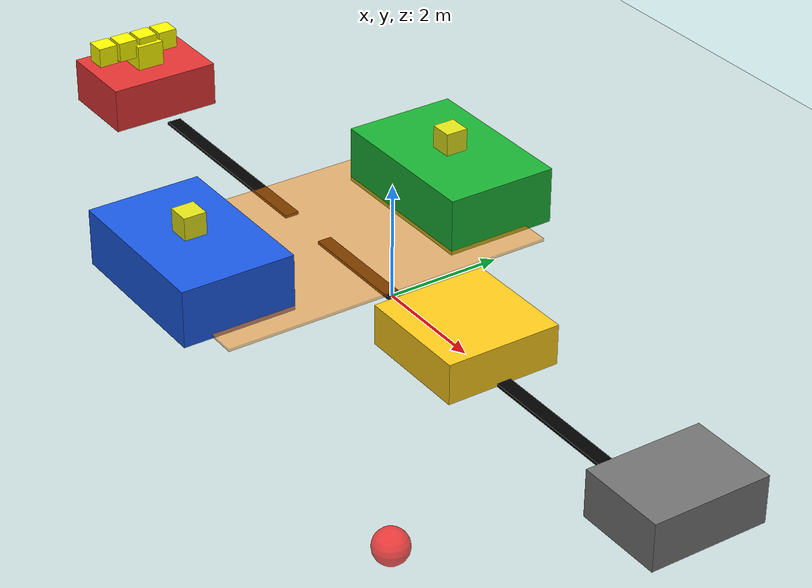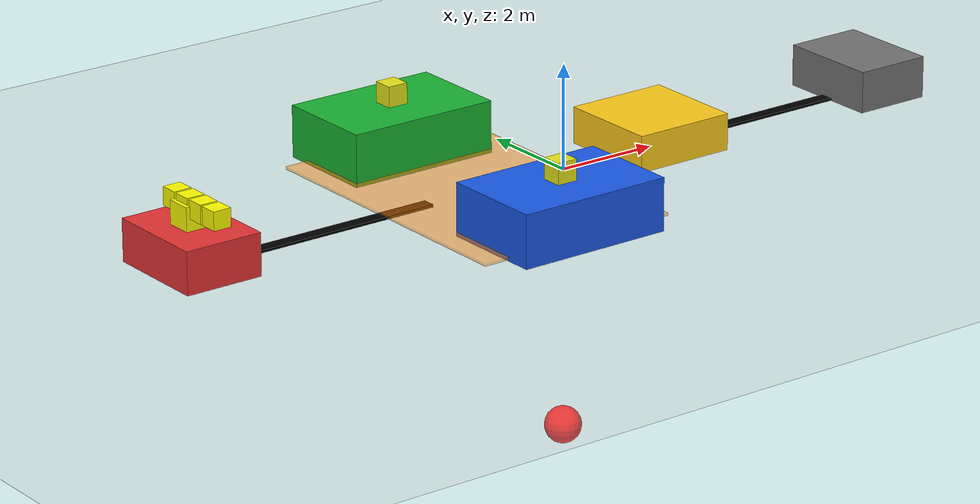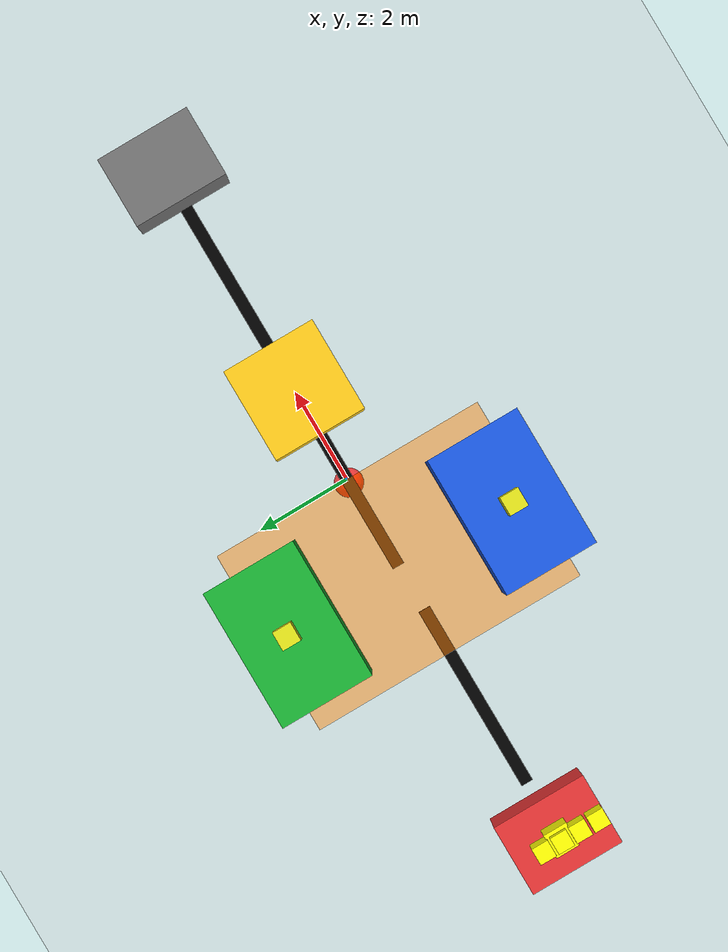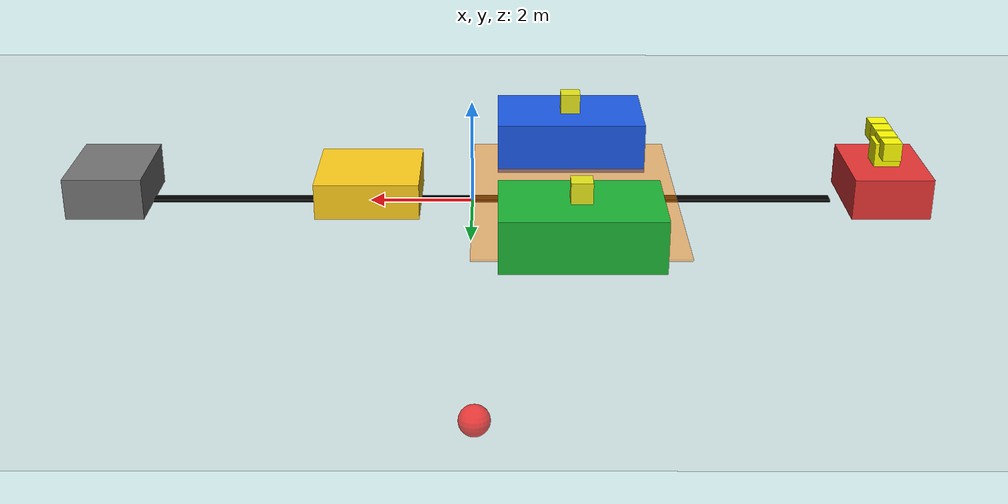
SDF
<?xml version="1.0" ?>
<sdf version="1.10">
  <world name="resilience_aware_digital_twin_world">

    <plugin name="gz::sim::systems::Physics" filename="gz-sim-physics-system"/>
    <plugin name="gz::sim::systems::UserCommands" filename="gz-sim-user-commands-system"/>
    <plugin name="gz::sim::systems::SceneBroadcaster" filename="gz-sim-scene-broadcaster-system"/>

    <gravity>0 0 -9.8</gravity>

    <scene>
      <ambient>0.5 0.5 0.5 1</ambient>
      <background>0.72 0.78 0.82 1</background>
      <shadows>true</shadows>
    </scene>

    <!-- Ground plane -->
    <model name="ground_plane">
      <static>true</static>
      <link name="link">
        <collision name="collision">
          <geometry>
            <plane>
              <normal>0 0 1</normal>
              <size>30 20</size>
            </plane>
          </geometry>
        </collision>
        <visual name="visual">
          <geometry>
            <plane>
              <normal>0 0 1</normal>
              <size>30 20</size>
            </plane>
          </geometry>
          <material>
            <ambient>0.82 0.82 0.82 1</ambient>
            <diffuse>0.82 0.82 0.82 1</diffuse>
          </material>
        </visual>
      </link>
    </model>

    <!-- Loading station -->
    <model name="loading_station">
      <static>true</static>
      <pose>-8 0 0.4 0 0 0</pose>
      <link name="link">
        <collision name="collision">
          <geometry>
            <box><size>1.5 2 0.8</size></box>
          </geometry>
        </collision>
        <visual name="visual">
          <geometry>
            <box><size>1.5 2 0.8</size></box>
          </geometry>
          <material>
            <ambient>0.9 0.2 0.2 1</ambient>
            <diffuse>0.9 0.2 0.2 1</diffuse>
          </material>
        </visual>
      </link>
    </model>

    <!-- Production Cell 1 -->
    <model name="production_cell_1">
      <static>true</static>
      <pose>-2 2.5 0.5 0 0 0</pose>
      <link name="link">
        <collision name="collision">
          <geometry>
            <box><size>3 2 1</size></box>
          </geometry>
        </collision>
        <visual name="visual">
          <geometry>
            <box><size>3 2 1</size></box>
          </geometry>
          <material>
            <ambient>0.1 0.7 0.2 1</ambient>
            <diffuse>0.1 0.7 0.2 1</diffuse>
          </material>
        </visual>
      </link>
    </model>

    <!-- Production Cell 2 -->
    <model name="production_cell_2">
      <static>true</static>
      <pose>-2 -2.5 0.5 0 0 0</pose>
      <link name="link">
        <collision name="collision">
          <geometry>
            <box><size>3 2 1</size></box>
          </geometry>
        </collision>
        <visual name="visual">
          <geometry>
            <box><size>3 2 1</size></box>
          </geometry>
          <material>
            <ambient>0.1 0.35 0.9 1</ambient>
            <diffuse>0.1 0.35 0.9 1</diffuse>
          </material>
        </visual>
      </link>
    </model>

    <!-- Shared buffer for workload balancing -->
    <model name="shared_buffer">
      <static>true</static>
      <pose>2 0 0.35 0 0 0</pose>
      <link name="link">
        <collision name="collision">
          <geometry>
            <box><size>2 2 0.7</size></box>
          </geometry>
        </collision>
        <visual name="visual">
          <geometry>
            <box><size>2 2 0.7</size></box>
          </geometry>
          <material>
            <ambient>1 0.8 0.1 1</ambient>
            <diffuse>1 0.8 0.1 1</diffuse>
          </material>
        </visual>
      </link>
    </model>

    <!-- Output station -->
    <model name="output_station">
      <static>true</static>
      <pose>7 0 0.4 0 0 0</pose>
      <link name="link">
        <collision name="collision">
          <geometry>
            <box><size>1.5 2 0.8</size></box>
          </geometry>
        </collision>
        <visual name="visual">
          <geometry>
            <box><size>1.5 2 0.8</size></box>
          </geometry>
          <material>
            <ambient>0.45 0.45 0.45 1</ambient>
            <diffuse>0.45 0.45 0.45 1</diffuse>
          </material>
        </visual>
      </link>
    </model>

    <!-- Delay monitoring zone -->
    <model name="delay_monitor_zone">
      <static>true</static>
      <pose>-2 0 0.05 0 0 0</pose>
      <link name="link">
        <visual name="visual">
          <geometry>
            <box><size>4 6 0.05</size></box>
          </geometry>
          <material>
            <ambient>1 0.5 0 0.5</ambient>
            <diffuse>1 0.5 0 0.5</diffuse>
          </material>
        </visual>
      </link>
    </model>

    <!-- Workflow path markers -->
    <model name="path_loading_to_cells">
      <static>true</static>
      <pose>-5 0 0.03 0 0 0</pose>
      <link name="link">
        <visual name="visual">
          <geometry>
            <box><size>4 0.25 0.05</size></box>
          </geometry>
          <material>
            <ambient>0 0 0 1</ambient>
            <diffuse>0 0 0 1</diffuse>
          </material>
        </visual>
      </link>
    </model>

    <model name="path_cells_to_buffer">
      <static>true</static>
      <pose>0 0 0.03 0 0 0</pose>
      <link name="link">
        <visual name="visual">
          <geometry>
            <box><size>4 0.25 0.05</size></box>
          </geometry>
          <material>
            <ambient>0 0 0 1</ambient>
            <diffuse>0 0 0 1</diffuse>
          </material>
        </visual>
      </link>
    </model>

    <model name="path_buffer_to_output">
      <static>true</static>
      <pose>4.8 0 0.03 0 0 0</pose>
      <link name="link">
        <visual name="visual">
          <geometry>
            <box><size>3.6 0.25 0.05</size></box>
          </geometry>
          <material>
            <ambient>0 0 0 1</ambient>
            <diffuse>0 0 0 1</diffuse>
          </material>
        </visual>
      </link>
    </model>

    <!-- Workpieces -->
    <model name="workpiece_cell_1">
      <static>false</static>
      <pose>-2 2.5 1.2 0 0 0</pose>
      <link name="link">
        <collision name="collision">
          <geometry>
            <box><size>0.4 0.4 0.4</size></box>
          </geometry>
        </collision>
        <visual name="visual">
          <geometry>
            <box><size>0.4 0.4 0.4</size></box>
          </geometry>
          <material>
            <ambient>0.9 0.9 0.1 1</ambient>
            <diffuse>0.9 0.9 0.1 1</diffuse>
          </material>
        </visual>
      </link>
    </model>

    <model name="workpiece_cell_2">
      <static>false</static>
      <pose>-2 -2.5 1.2 0 0 0</pose>
      <link name="link">
        <collision name="collision">
          <geometry>
            <box><size>0.4 0.4 0.4</size></box>
          </geometry>
        </collision>
        <visual name="visual">
          <geometry>
            <box><size>0.4 0.4 0.4</size></box>
          </geometry>
          <material>
            <ambient>0.9 0.9 0.1 1</ambient>
            <diffuse>0.9 0.9 0.1 1</diffuse>
          </material>
        </visual>
      </link>
    </model>

     <!-- Animated workpiece for visual digital twin demonstration -->
    <model name="adaptive_workpiece">
      <static>true</static>
      <pose>-8 0 1.0 0 0 0</pose>
      <link name="link">
        <visual name="visual">
          <geometry>
            <box><size>0.5 0.5 0.5</size></box>
          </geometry>
          <material>
            <ambient>1 1 0 1</ambient>
            <diffuse>1 1 0 1</diffuse>
          </material>
        </visual>
      </link>
    </model>

    <!-- Red delay marker: appears above delayed cell -->
    <model name="delay_marker_red">
      <static>true</static>
      <pose>0 0 -5 0 0 0</pose>
      <link name="link">
        <visual name="visual">
          <geometry>
            <sphere><radius>0.35</radius></sphere>
          </geometry>
          <material>
            <ambient>1 0 0 1</ambient>
            <diffuse>1 0 0 1</diffuse>
          </material>
        </visual>
      </link>
    </model>

    <!-- Yellow helper marker: appears above helping cell -->
    <model name="helper_marker_yellow">
      <static>true</static>
      <pose>0 0 -5 0 0 0</pose>
      <link name="link">
        <visual name="visual">
          <geometry>
            <sphere><radius>0.35</radius></sphere>
          </geometry>
          <material>
            <ambient>1 0.8 0 1</ambient>
            <diffuse>1 0.8 0 1</diffuse>
          </material>
        </visual>
      </link>
    </model>

     <!-- Continuous moving workload boxes -->
    <model name="flow_box_1">
      <static>true</static>
      <pose>-8 0 1.2 0 0 0</pose>
      <link name="link">
        <visual name="visual">
          <geometry>
            <box><size>0.35 0.35 0.35</size></box>
          </geometry>
          <material>
            <ambient>1 1 0 1</ambient>
            <diffuse>1 1 0 1</diffuse>
          </material>
        </visual>
      </link>
    </model>

    <model name="flow_box_2">
      <static>true</static>
      <pose>-8 0.4 1.2 0 0 0</pose>
      <link name="link">
        <visual name="visual">
          <geometry>
            <box><size>0.35 0.35 0.35</size></box>
          </geometry>
          <material>
            <ambient>1 1 0 1</ambient>
            <diffuse>1 1 0 1</diffuse>
          </material>
        </visual>
      </link>
    </model>

    <model name="flow_box_3">
      <static>true</static>
      <pose>-8 -0.4 1.2 0 0 0</pose>
      <link name="link">
        <visual name="visual">
          <geometry>
            <box><size>0.35 0.35 0.35</size></box>
          </geometry>
          <material>
            <ambient>1 1 0 1</ambient>
            <diffuse>1 1 0 1</diffuse>
          </material>
        </visual>
      </link>
    </model>

    <model name="flow_box_4">
      <static>true</static>
      <pose>-8 -0.8 1.2 0 0 0</pose>
      <link name="link">
        <visual name="visual">
          <geometry>
            <box><size>0.35 0.35 0.35</size></box>
          </geometry>
          <material>
            <ambient>1 1 0 1</ambient>
            <diffuse>1 1 0 1</diffuse>
          </material>
        </visual>
      </link>
    </model>

    <!-- Light -->
    <light name="sun" type="directional">
      <pose>0 0 10 0 0 0</pose>
      <cast_shadows>true</cast_shadows>
      <intensity>1.0</intensity>
      <direction>-0.5 0.1 -0.9</direction>
      <diffuse>0.8 0.8 0.8 1</diffuse>
      <specular>0.2 0.2 0.2 1</specular>
    </light>

  </world>
</sdf>
